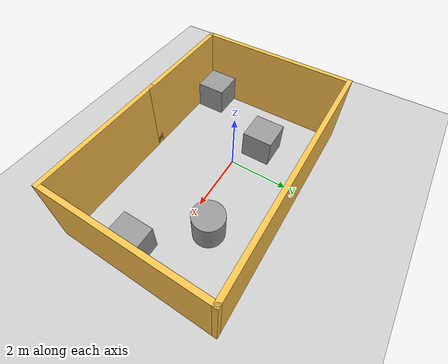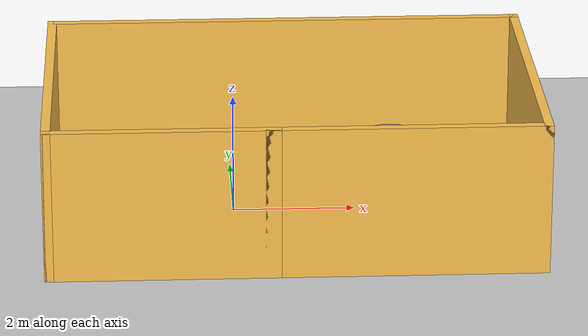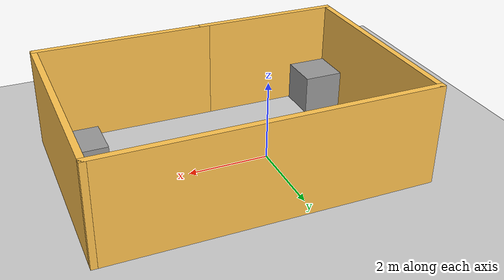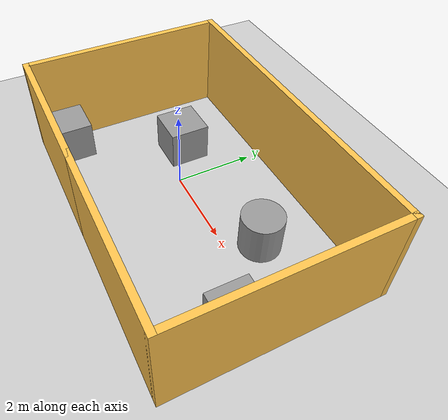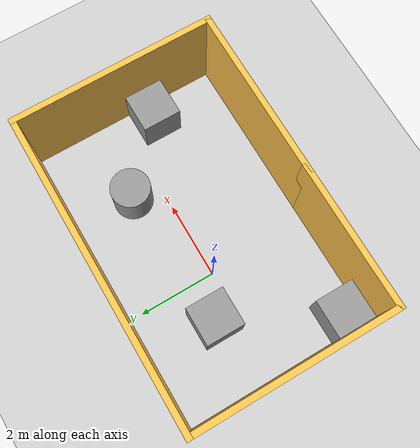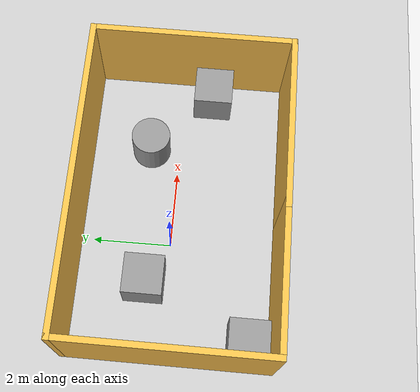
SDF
<sdf version="1.7">
 <world name="default">
  <light name="sun" type="directional">
   <pose>0 0 10 0 -0 0</pose>
   <diffuse>0.8 0.8 0.8 1</diffuse>
   <specular>0.2 0.2 0.2 1</specular>
   <attenuation>
    <range>1000</range>
    <constant>0.9</constant>
    <linear>0.01</linear>
    <quadratic>0.001</quadratic>
   </attenuation>
   <direction>-0.5 0.1 -0.9</direction>
   <spot><inner_angle>0</inner_angle><outer_angle>0</outer_angle><falloff>0</falloff></spot>
  </light>
  <model name="ground_plane">
   <static>1</static>
   <link name="link">
    <collision name="collision">
     <geometry><plane><normal>0 0 1</normal><size>100 100</size></plane></geometry>
     <surface>
      <contact><collide_bitmask>65535</collide_bitmask></contact>
      <friction><ode><mu>100</mu><mu2>50</mu2></ode></friction>
     </surface>
    </collision>
    <visual name="visual">
     <cast_shadows>0</cast_shadows>
     <geometry><plane><normal>0 0 1</normal><size>100 100</size></plane></geometry>
     <material>
      <script><uri>file://media/materials/scripts/gazebo.material</uri><name>Gazebo/Grey</name></script>
     </material>
    </visual>
   </link>
  </model>
  <gravity>0 0 -9.8</gravity>
  <magnetic_field>6e-06 2.3e-05 -4.2e-05</magnetic_field>
  <atmosphere type="adiabatic"/>
  <physics type="ode">
   <max_step_size>0.001</max_step_size>
   <real_time_factor>1</real_time_factor>
   <real_time_update_rate>1000</real_time_update_rate>
  </physics>
  <scene><ambient>0.4 0.4 0.4 1</ambient><background>0.7 0.7 0.7 1</background><shadows>1</shadows></scene>
  <audio><device>default</device></audio>
  <spherical_coordinates>
   <surface_model>EARTH_WGS84</surface_model>
   <latitude_deg>0</latitude_deg>
   <longitude_deg>0</longitude_deg>
   <elevation>0</elevation>
   <heading_deg>0</heading_deg>
  </spherical_coordinates>
  <model name="small_room">
   <pose>0.93758 -0.164077 0 0 -0 0</pose>
   <link name="Wall_0">
    <collision name="Wall_0_Collision">
     <geometry><box><size>4.5 0.15 2.5</size></box></geometry>
     <pose>0 0 1.25 0 -0 0</pose>
    </collision>
    <visual name="Wall_0_Visual">
     <pose>0 0 1.25 0 -0 0</pose>
     <geometry><box><size>4.5 0.15 2.5</size></box></geometry>
     <material>
      <script><uri>file://media/materials/scripts/gazebo.material</uri><name>Gazebo/Grey</name></script>
      <ambient>1 0.764706 0.305882 1</ambient>
     </material>
     <meta><layer>0</layer></meta>
    </visual>
    <pose>1.75 -2.55 0 0 -0 0</pose>
   </link>
   <link name="Wall_1">
    <collision name="Wall_1_Collision">
     <geometry><box><size>5.25 0.15 2.5</size></box></geometry>
     <pose>0 0 1.25 0 -0 0</pose>
    </collision>
    <visual name="Wall_1_Visual">
     <pose>0 0 1.25 0 -0 0</pose>
     <geometry><box><size>5.25 0.15 2.5</size></box></geometry>
     <material>
      <script><uri>file://media/materials/scripts/gazebo.material</uri><name>Gazebo/Grey</name></script>
      <ambient>1 0.764706 0.305882 1</ambient>
     </material>
     <meta><layer>0</layer></meta>
    </visual>
    <pose>3.925 -0 0 0 -0 1.5708</pose>
   </link>
   <link name="Wall_2">
    <collision name="Wall_2_Collision">
     <geometry><box><size>8 0.15 2.5</size></box></geometry>
     <pose>0 0 1.25 0 -0 0</pose>
    </collision>
    <visual name="Wall_2_Visual">
     <pose>0 0 1.25 0 -0 0</pose>
     <geometry><box><size>8 0.15 2.5</size></box></geometry>
     <material>
      <script><uri>file://media/materials/scripts/gazebo.material</uri><name>Gazebo/Grey</name></script>
      <ambient>1 0.764706 0.305882 1</ambient>
     </material>
     <meta><layer>0</layer></meta>
    </visual>
    <pose>0 2.55 0 0 -0 3.14159</pose>
   </link>
   <link name="Wall_3">
    <collision name="Wall_3_Collision">
     <geometry><box><size>5.25 0.15 2.5</size></box></geometry>
     <pose>0 0 1.25 0 -0 0</pose>
    </collision>
    <visual name="Wall_3_Visual">
     <pose>0 0 1.25 0 -0 0</pose>
     <geometry><box><size>5.25 0.15 2.5</size></box></geometry>
     <material>
      <script><uri>file://media/materials/scripts/gazebo.material</uri><name>Gazebo/Grey</name></script>
      <ambient>1 0.764706 0.305882 1</ambient>
     </material>
     <meta><layer>0</layer></meta>
    </visual>
    <pose>-3.925 -0 0 0 -0 -1.5708</pose>
   </link>
   <link name="Wall_4">
    <collision name="Wall_4_Collision">
     <geometry><box><size>3.75 0.15 2.5</size></box></geometry>
     <pose>0 0 1.25 0 -0 0</pose>
    </collision>
    <visual name="Wall_4_Visual">
     <pose>0 0 1.25 0 -0 0</pose>
     <geometry><box><size>3.75 0.15 2.5</size></box></geometry>
     <material>
      <script><uri>file://media/materials/scripts/gazebo.material</uri><name>Gazebo/Grey</name></script>
      <ambient>1 0.764706 0.305882 1</ambient>
     </material>
     <meta><layer>0</layer></meta>
    </visual>
    <pose>-2.125 -2.55 0 0 -0 0</pose>
   </link>
   <static>1</static>
  </model>
  <model name="unit_box">
   <pose>4.28758 -0.786733 0.5 0 -0 5e-06</pose>
   <link name="link">
    <inertial>
     <mass>1</mass>
     <inertia>
      <ixx>0.166667</ixx>
      <ixy>0</ixy>
      <ixz>0</ixz>
      <iyy>0.166667</iyy>
      <iyz>0</iyz>
      <izz>0.166667</izz>
     </inertia>
    </inertial>
    <collision name="collision"><geometry><box><size>1 1 1</size></box></geometry></collision>
    <visual name="visual">
     <geometry><box><size>1 1 1</size></box></geometry>
     <material>
      <script><name>Gazebo/Grey</name><uri>file://media/materials/scripts/gazebo.material</uri></script>
     </material>
    </visual>
   </link>
  </model>
  <model name="unit_box_0">
   <pose>-2.41243 -2.10572 0.499995 0 -1e-05 -5e-06</pose>
   <link name="link">
    <inertial>
     <mass>1</mass>
     <inertia>
      <ixx>0.166667</ixx>
      <ixy>0</ixy>
      <ixz>0</ixz>
      <iyy>0.166667</iyy>
      <iyz>0</iyz>
      <izz>0.166667</izz>
     </inertia>
    </inertial>
    <collision name="collision"><geometry><box><size>1 1 1</size></box></geometry></collision>
    <visual name="visual">
     <geometry><box><size>1 1 1</size></box></geometry>
     <material>
      <script><name>Gazebo/Grey</name><uri>file://media/materials/scripts/gazebo.material</uri></script>
     </material>
    </visual>
   </link>
  </model>
  <model name="unit_cylinder_0">
   <pose>2.65931 0.751797 0.499997 3e-06 3e-06 0</pose>
   <link name="link">
    <inertial>
     <mass>1</mass>
     <inertia><ixx>0.145833</ixx><ixy>0</ixy><ixz>0</ixz><iyy>0.145833</iyy><iyz>0</iyz><izz>0.125</izz></inertia>
    </inertial>
    <collision name="collision">
     <geometry><cylinder><radius>0.5</radius><length>1</length></cylinder></geometry>
    </collision>
    <visual name="visual">
     <geometry><cylinder><radius>0.5</radius><length>1</length></cylinder></geometry>
     <material>
      <script><name>Gazebo/Grey</name><uri>file://media/materials/scripts/gazebo.material</uri></script>
     </material>
    </visual>
   </link>
  </model>
  <model name="unit_box_1">
   <pose>-1.03828 0.570726 0.499995 -1e-05 -0 0</pose>
   <link name="link">
    <inertial>
     <mass>1</mass>
     <inertia>
      <ixx>0.166667</ixx>
      <ixy>0</ixy>
      <ixz>0</ixz>
      <iyy>0.166667</iyy>
      <iyz>0</iyz>
      <izz>0.166667</izz>
     </inertia>
    </inertial>
    <collision name="collision"><geometry><box><size>1 1 1</size></box></geometry></collision>
    <visual name="visual">
     <geometry><box><size>1 1 1</size></box></geometry>
     <material>
      <script><name>Gazebo/Grey</name><uri>file://media/materials/scripts/gazebo.material</uri></script>
     </material>
    </visual>
   </link>
  </model>
 </world>
</sdf>
